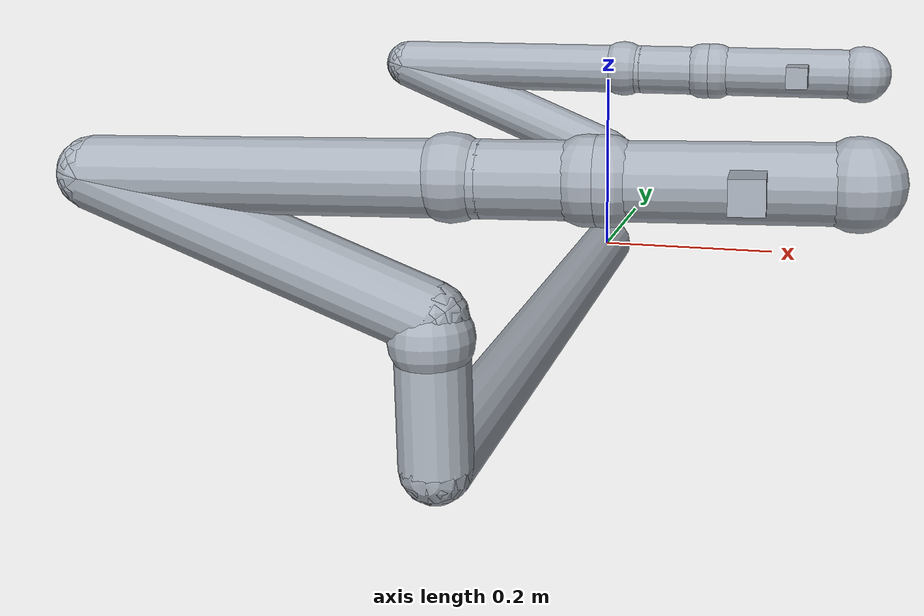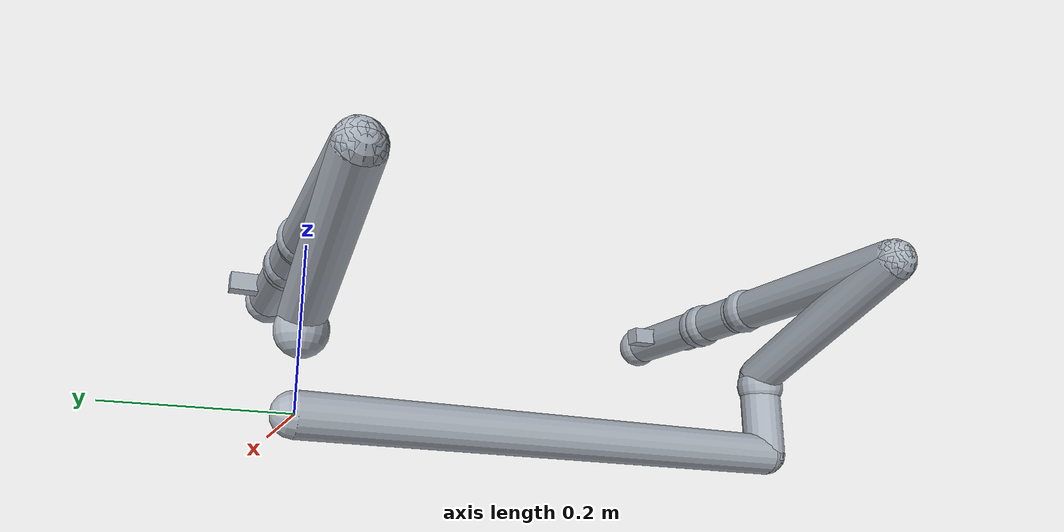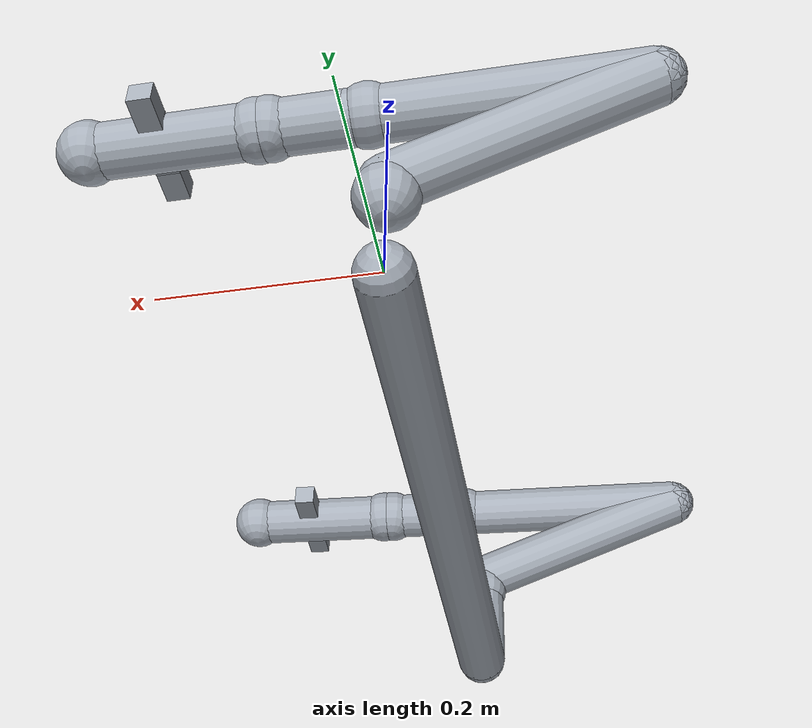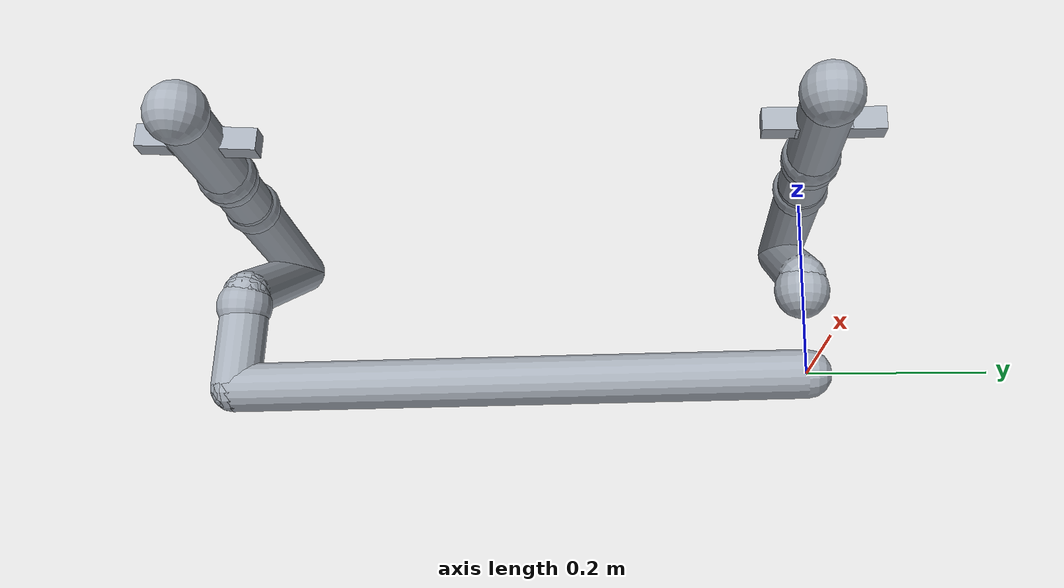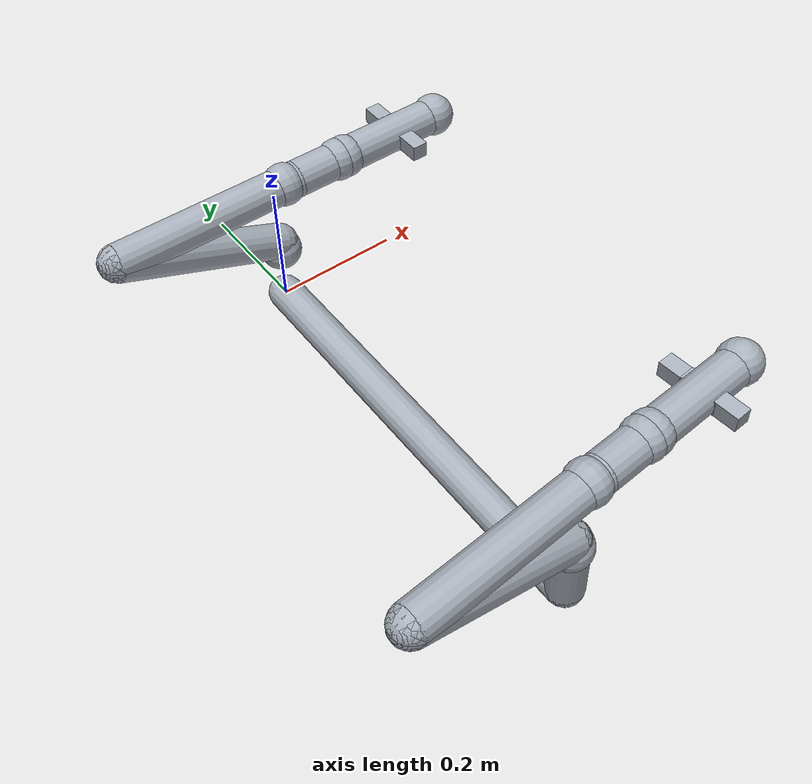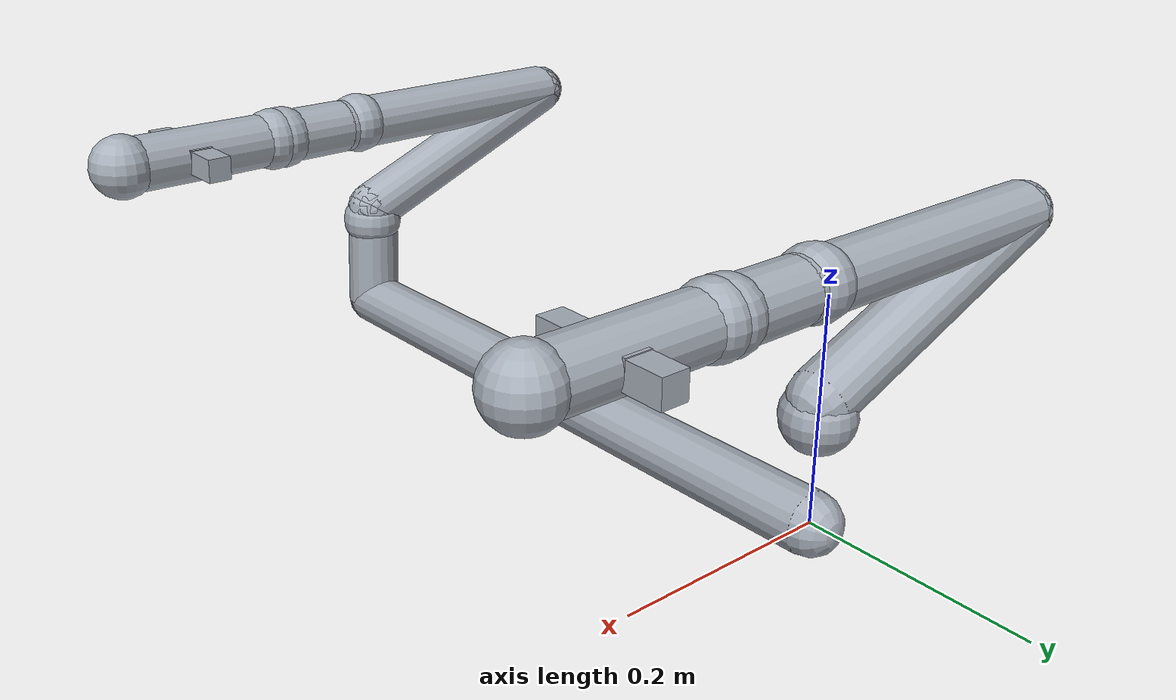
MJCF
<mujoco model="mmk2_s_g2_dual_arm_no_mesh">
  <!-- Mesh-free conversion of dos-w1.urdf; generated by convert_urdf_to_nomesh_mjcf.py. -->
  <compiler angle="radian" autolimits="true" balanceinertia="true" />
  <option integrator="implicitfast" cone="elliptic" impratio="10" />
  <default>
    <joint damping="0.1" armature="0.01" />
    <geom rgba="0.65 0.68 0.72 1" friction="0.8 0.1 0.1" condim="3" />
  </default>
  <worldbody>
    <light name="top" pos="0 0 2" mode="trackcom" />
    <body name="left_base_link">
      <inertial pos="-0.007609 -0.00070281 0.038353" quat="1 0 0 0" mass="0.7358" diaginertia="0.00056691 0.00068606 0.0010143" />
      <geom type="capsule" size="0.028" fromto="0 0 0 0.00237504577 -0.655552154 -0.0106719631" name="left_base_link_geom" />
      <body name="left_link1" pos="0 0 0.1117" quat="1 0 0 0">
        <inertial pos="-6.8774E-06 -0.0010314 -0.014457" quat="1 0 0 0" mass="0.78638" diaginertia="0.00026059 0.00035988 0.00030082" />
        <joint name="left_joint1" type="hinge" axis="0 0 1" range="-2.7475 2.7475" />
        <geom type="sphere" size="0.0322" pos="-6.8774e-06 -0.0010314 -0.014457" name="left_link1_geom" />
        <body name="left_link2" pos="0 0 0" quat="0.136004465 0.135754308 -0.693386792 0.694469805">
          <inertial pos="0.17545 0.0056978 0.005978" quat="1 0 0 0" mass="1.0247" diaginertia="0.00040289 0.003174 0.0033885" />
          <joint name="left_joint2" type="hinge" axis="0 0 1" range="-2.9656 0.1744" />
          <geom type="capsule" size="0.028" fromto="0 0 0 0.27009 0 0" name="left_link2_geom" />
          <body name="left_link3" pos="0.27009 0 0" quat="0.558060057 -0.000659483833 0.000443518324 0.829800182">
            <inertial pos="-7.1479E-05 0.10773 0.010341" quat="1 0 0 0" mass="0.59643" diaginertia="0.0011117 0.00022817 0.0011062" />
            <joint name="left_joint3" type="hinge" axis="0 0 1" range="-0.08722 3.14" />
            <geom type="capsule" size="0.028" fromto="0 0 0 8.2128e-05 0.29015 0" name="left_link3_geom" />
            <body name="left_link4" pos="8.2128E-05 0.29015 0" quat="0.499998163 -0.5 -0.5 -0.500001837">
              <inertial pos="3.2214E-05 -0.00064503 -0.020926" quat="1 0 0 0" mass="0.37017" diaginertia="0.00011024 0.00013798 0.00011351" />
              <joint name="left_joint4" type="hinge" axis="0 0 1" range="-3.01 3.01" />
              <geom type="sphere" size="0.0322" pos="3.2214e-05 -0.00064503 -0.020926" name="left_link4_geom" />
              <body name="left_link5" pos="0 0 0" quat="0.707105483 0.70710808 0 0">
                <inertial pos="1.0183E-05 0.033415 0.0052853" quat="1 0 0 0" mass="0.40859" diaginertia="0.00014324 0.00015285 0.00014936" />
                <joint name="left_joint5" type="hinge" axis="0 0 1" range="-1.76 1.76" />
                <geom type="capsule" size="0.028" fromto="0 0 0 0 0.0864 0" name="left_link5_geom" />
                <body name="left_link6" pos="0 0.0864 0" quat="0.707105483 0 0 0.70710808">
                  <inertial pos="-0.011264 1.1814E-06 2.7354E-06" quat="1 0 0 0" mass="0.14593" diaginertia="2.3175e-05 1.2978e-05 1.2976e-05" />
                  <joint name="left_joint6" type="hinge" axis="1 0 0" range="-3.009 3.009" />
                  <geom type="sphere" size="0.0322" pos="-0.011264 1.1814e-06 2.7354e-06" name="left_link6_geom" />
                  <body name="left_flange" pos="0 0 0" quat="1 0 0 0">
                    <geom type="sphere" size="0.0322" pos="0 0 0" name="left_flange_geom" />
                    <body name="left_eef_base_link" pos="0.009 0 0" quat="1 0 0 0">
                      <inertial pos="0.046303 -9.8611E-06 -1.4675E-05" quat="1 0 0 0" mass="0.26507" diaginertia="348.368942 198.535197 449.228174" />
                      <geom type="capsule" size="0.028" fromto="0 0 0 0.1593 0 0" name="left_eef_base_link_geom" />
                      <body name="left_eef_link1" pos="0.0736 0.05 -0.015" quat="0.707105483 0 0.70710808 0">
                        <inertial pos="-0.015415 -0.066964 0.014312" quat="1 0 0 0" mass="0.078003" diaginertia="34.1905834 54.1781125 27.3518738" />
                        <joint name="left_eef_joint1" type="slide" axis="0 1 0" range="-0.034 0" />
                        <geom type="box" size="0.012 0.045 0.012" pos="-0.015415 -0.066964 0.014312" name="left_eef_link1_geom" />
                      </body>
                      <body name="left_eef_link2" pos="0.0736 -0.05 -0.015" quat="0.707105483 0 0.70710808 0">
                        <inertial pos="-0.014585 0.066964 0.014312" quat="1 0 0 0" mass="0.078003" diaginertia="34.1905834 54.1781125 27.3518738" />
                        <joint name="left_eef_joint2" type="slide" axis="0 1 0" range="0 0.034" />
                        <geom type="box" size="0.012 0.045 0.012" pos="-0.014585 0.066964 0.014312" name="left_eef_link2_geom" />
                      </body>
                      <body name="left_end_link" pos="0.1593 0 0" quat="1 0 0 0">
                        <inertial pos="0 0 0" quat="1 0 0 0" mass="1e-08" diaginertia="1e-10 1e-10 1e-10" />
                        <geom type="sphere" size="0.0322" pos="0 0 0" name="left_end_link_geom" />
                      </body>
                    </body>
                  </body>
                </body>
              </body>
            </body>
          </body>
        </body>
      </body>
      <body name="right_base_link" pos="0.002375045767599601 -0.6555521540145097 -0.0106719631089458" quat="0.99947562 -0.0144099227 -0.00943273475 0.0274201252">
        <inertial pos="-0.007609 -0.00070281 0.038353" quat="1 0 0 0" mass="0.7358" diaginertia="0.00056691 0.00068606 0.0010143" />
        <geom type="capsule" size="0.028" fromto="0 0 0 0 0 0.1117" name="right_base_link_geom" />
        <body name="right_link1" pos="0 0 0.1117" quat="1 0 0 0">
          <inertial pos="-6.8774E-06 -0.0010314 -0.014457" quat="1 0 0 0" mass="0.78638" diaginertia="0.00026059 0.00035988 0.00030082" />
          <joint name="right_joint1" type="hinge" axis="0 0 1" range="-2.7475 2.7475" />
          <geom type="sphere" size="0.0322" pos="-6.8774e-06 -0.0010314 -0.014457" name="right_link1_geom" />
          <body name="right_link2" pos="0 0 0" quat="0.136004465 0.135754308 -0.693386792 0.694469805">
            <inertial pos="0.17545 0.0056978 0.005978" quat="1 0 0 0" mass="1.0247" diaginertia="0.00040289 0.003174 0.0033885" />
            <joint name="right_joint2" type="hinge" axis="0 0 1" range="-2.9656 0.1744" />
            <geom type="capsule" size="0.028" fromto="0 0 0 0.27009 0 0" name="right_link2_geom" />
            <body name="right_link3" pos="0.27009 0 0" quat="0.558060057 -0.000659483833 0.000443518324 0.829800182">
              <inertial pos="-7.1479E-05 0.10773 0.010341" quat="1 0 0 0" mass="0.59643" diaginertia="0.0011117 0.00022817 0.0011062" />
              <joint name="right_joint3" type="hinge" axis="0 0 1" range="-0.08722 3.14" />
              <geom type="capsule" size="0.028" fromto="0 0 0 8.2128e-05 0.29015 0" name="right_link3_geom" />
              <body name="right_link4" pos="8.2128E-05 0.29015 0" quat="0.499998163 -0.5 -0.5 -0.500001837">
                <inertial pos="3.2214E-05 -0.00064503 -0.020926" quat="1 0 0 0" mass="0.37017" diaginertia="0.00011024 0.00013798 0.00011351" />
                <joint name="right_joint4" type="hinge" axis="0 0 1" range="-3.01 3.01" />
                <geom type="sphere" size="0.0322" pos="3.2214e-05 -0.00064503 -0.020926" name="right_link4_geom" />
                <body name="right_link5" pos="0 0 0" quat="0.707105483 0.70710808 0 0">
                  <inertial pos="1.0183E-05 0.033415 0.0052853" quat="1 0 0 0" mass="0.40859" diaginertia="0.00014324 0.00015285 0.00014936" />
                  <joint name="right_joint5" type="hinge" axis="0 0 1" range="-1.76 1.76" />
                  <geom type="capsule" size="0.028" fromto="0 0 0 0 0.0864 0" name="right_link5_geom" />
                  <body name="right_link6" pos="0 0.0864 0" quat="0.707105483 0 0 0.70710808">
                    <inertial pos="-0.011264 1.1814E-06 2.7354E-06" quat="1 0 0 0" mass="0.14593" diaginertia="2.3175e-05 1.2978e-05 1.2976e-05" />
                    <joint name="right_joint6" type="hinge" axis="1 0 0" range="-3.009 3.009" />
                    <geom type="sphere" size="0.0322" pos="-0.011264 1.1814e-06 2.7354e-06" name="right_link6_geom" />
                    <body name="right_flange" pos="0 0 0" quat="1 0 0 0">
                      <geom type="sphere" size="0.0322" pos="0 0 0" name="right_flange_geom" />
                      <body name="right_eef_base_link" pos="0.009 0 0" quat="1 0 0 0">
                        <inertial pos="0.046303 -9.8611E-06 -1.4675E-05" quat="1 0 0 0" mass="0.26507" diaginertia="348.368942 198.535197 449.228174" />
                        <geom type="capsule" size="0.028" fromto="0 0 0 0.1593 0 0" name="right_eef_base_link_geom" />
                        <body name="right_eef_link1" pos="0.0736 0.05 -0.015" quat="0.707105483 0 0.70710808 0">
                          <inertial pos="-0.015415 -0.066964 0.014312" quat="1 0 0 0" mass="0.078003" diaginertia="34.1905834 54.1781125 27.3518738" />
                          <joint name="right_eef_joint1" type="slide" axis="0 1 0" range="-0.034 0" />
                          <geom type="box" size="0.012 0.045 0.012" pos="-0.015415 -0.066964 0.014312" name="right_eef_link1_geom" />
                        </body>
                        <body name="right_eef_link2" pos="0.0736 -0.05 -0.015" quat="0.707105483 0 0.70710808 0">
                          <inertial pos="-0.014585 0.066964 0.014312" quat="1 0 0 0" mass="0.078003" diaginertia="34.1905834 54.1781125 27.3518738" />
                          <joint name="right_eef_joint2" type="slide" axis="0 1 0" range="0 0.034" />
                          <geom type="box" size="0.012 0.045 0.012" pos="-0.014585 0.066964 0.014312" name="right_eef_link2_geom" />
                        </body>
                        <body name="right_end_link" pos="0.1593 0 0" quat="1 0 0 0">
                          <inertial pos="0 0 0" quat="1 0 0 0" mass="1e-08" diaginertia="1e-10 1e-10 1e-10" />
                          <geom type="sphere" size="0.0322" pos="0 0 0" name="right_end_link_geom" />
                        </body>
                      </body>
                    </body>
                  </body>
                </body>
              </body>
            </body>
          </body>
        </body>
      </body>
    </body>
  </worldbody>
  <actuator>
    <position name="left_joint1_actuator" joint="left_joint1" kp="200" forcerange="-12 12" ctrlrange="-2.7475 2.7475" />
    <position name="left_joint2_actuator" joint="left_joint2" kp="200" forcerange="-12 12" ctrlrange="-2.9656 0.1744" />
    <position name="left_joint3_actuator" joint="left_joint3" kp="200" forcerange="-12 12" ctrlrange="-0.08722 3.14" />
    <position name="left_joint4_actuator" joint="left_joint4" kp="200" forcerange="-3 3" ctrlrange="-3.01 3.01" />
    <position name="left_joint5_actuator" joint="left_joint5" kp="200" forcerange="-3 3" ctrlrange="-1.76 1.76" />
    <position name="left_joint6_actuator" joint="left_joint6" kp="200" forcerange="-3 3" ctrlrange="-3.009 3.009" />
    <position name="left_eef_joint1_actuator" joint="left_eef_joint1" kp="1000" forcerange="-3 3" ctrlrange="-0.034 0" />
    <position name="left_eef_joint2_actuator" joint="left_eef_joint2" kp="1000" forcerange="-3 3" ctrlrange="0 0.034" />
    <position name="right_joint1_actuator" joint="right_joint1" kp="200" forcerange="-12 12" ctrlrange="-2.7475 2.7475" />
    <position name="right_joint2_actuator" joint="right_joint2" kp="200" forcerange="-12 12" ctrlrange="-2.9656 0.1744" />
    <position name="right_joint3_actuator" joint="right_joint3" kp="200" forcerange="-12 12" ctrlrange="-0.08722 3.14" />
    <position name="right_joint4_actuator" joint="right_joint4" kp="200" forcerange="-3 3" ctrlrange="-3.01 3.01" />
    <position name="right_joint5_actuator" joint="right_joint5" kp="200" forcerange="-3 3" ctrlrange="-1.76 1.76" />
    <position name="right_joint6_actuator" joint="right_joint6" kp="200" forcerange="-3 3" ctrlrange="-3.009 3.009" />
    <position name="right_eef_joint1_actuator" joint="right_eef_joint1" kp="1000" forcerange="-3 3" ctrlrange="-0.034 0" />
    <position name="right_eef_joint2_actuator" joint="right_eef_joint2" kp="1000" forcerange="-3 3" ctrlrange="0 0.034" />
  </actuator>
</mujoco>
